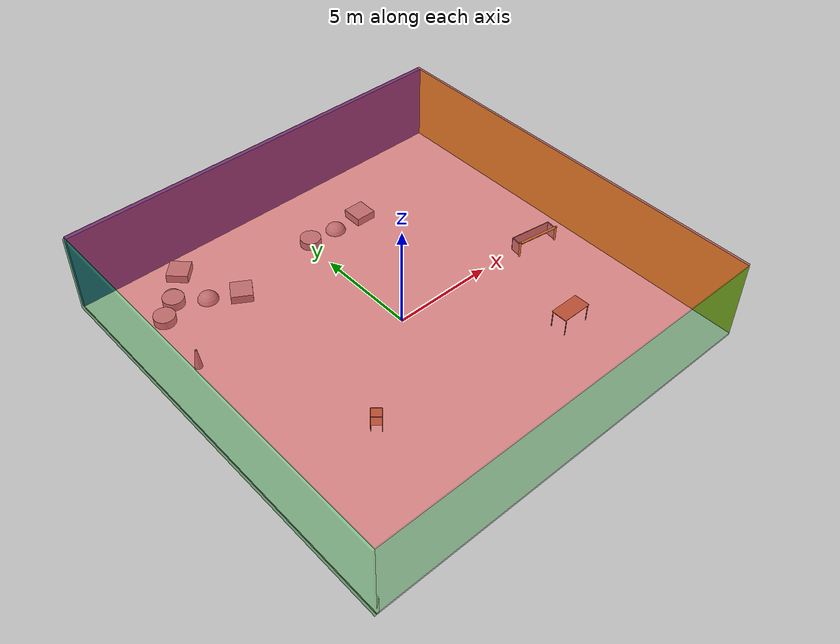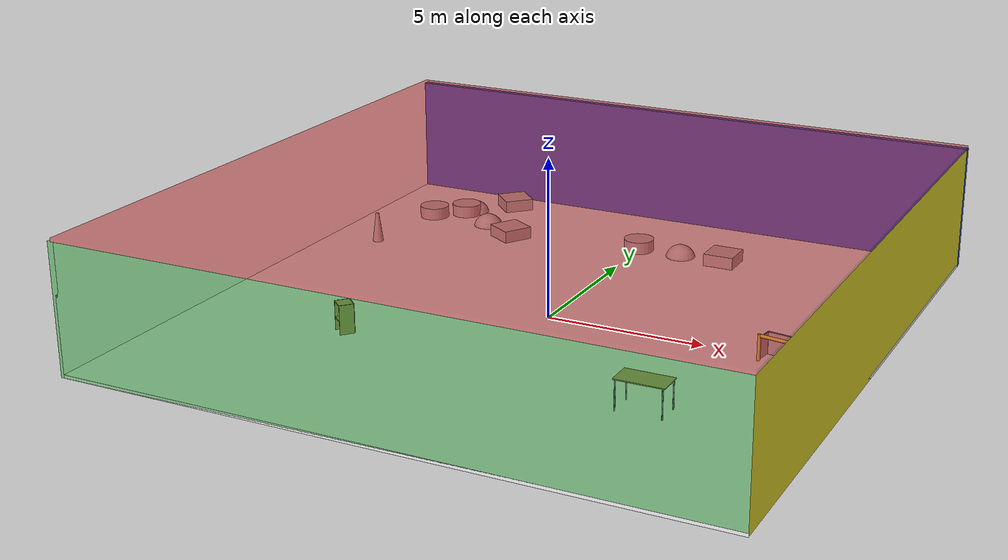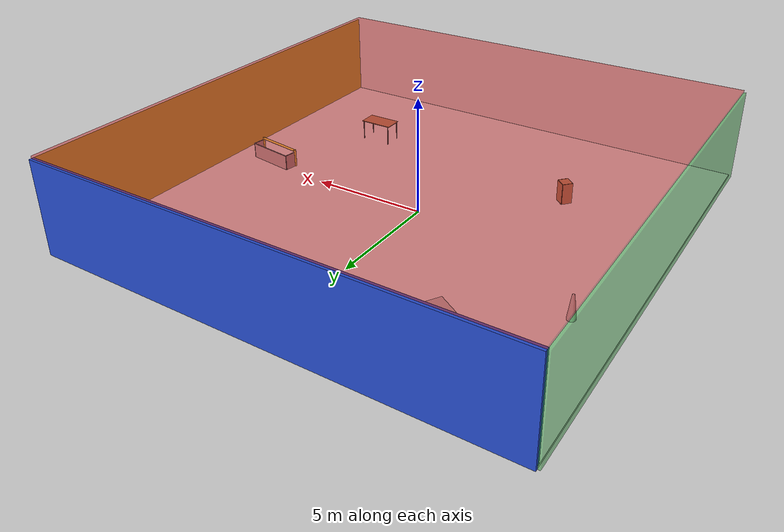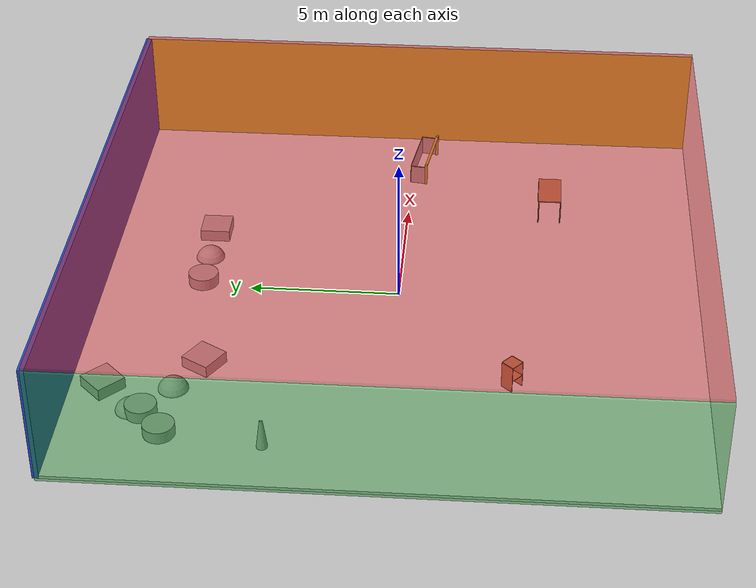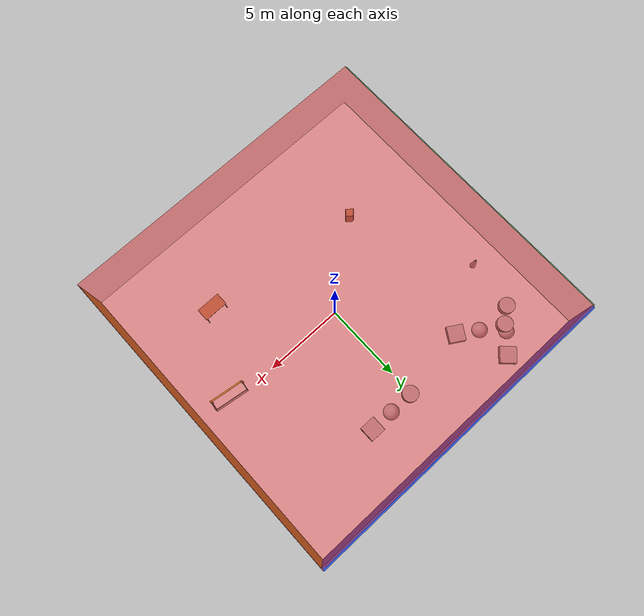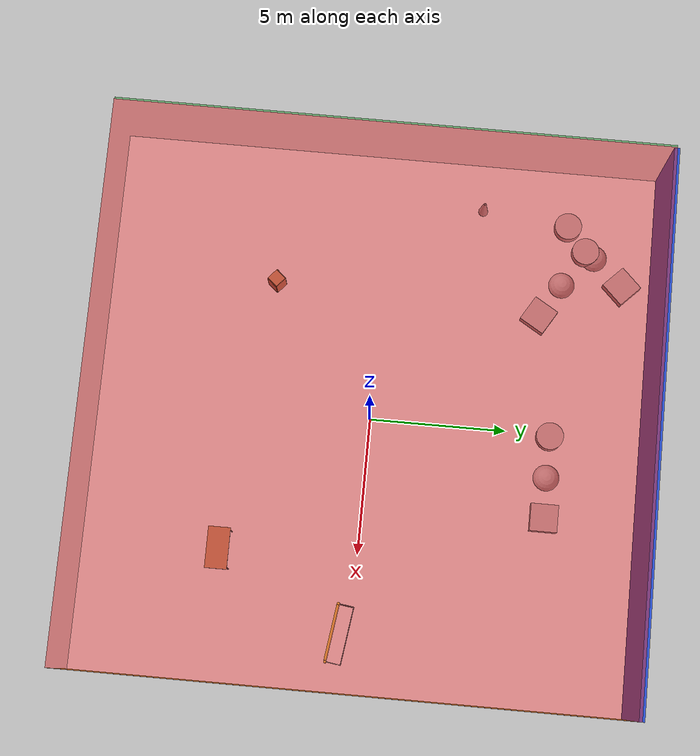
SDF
<sdf version="1.4">
 <world name="default">
  <physics type="ode">
   <max_step_size>0.001</max_step_size>
   <real_time_factor>1</real_time_factor>
   <real_time_update_rate>1000</real_time_update_rate>
   <gravity>0 0 -9.8</gravity>
  </physics>
  <scene><ambient>0.4 0.4 0.4 1</ambient><background>0.7 0.7 0.7 1</background><shadows>1</shadows></scene>
  <model name="Surrounding">
   <static>1</static>
   <link name="Ceiling">
    <collision name="Ceiling_Collision"><geometry><box><size>20 20 0.1</size></box></geometry></collision>
    <visual name="Ceiling_Visual">
     <geometry><box><size>20 20 0.1</size></box></geometry>
     <material>
      <script><uri>file://media/materials/scripts/gazebo.material</uri><name>Gazebo/RedTransparent</name></script>
     </material>
    </visual>
    <pose>0 0 4.05 0 0 0</pose>
   </link>
   <link name="Wall_South">
    <collision name="Wall_South_Collision">
     <geometry><box><size>20 0 4</size></box></geometry>
     <pose>0 0 2 0 -0 0</pose>
    </collision>
    <visual name="Wall_South_Visual">
     <pose>0 0 2 0 -0 0</pose>
     <geometry><box><size>20 0 4</size></box></geometry>
     <material>
      <script><uri>file://media/materials/scripts/gazebo.material</uri><name>Gazebo/GreenTransparent</name></script>
     </material>
    </visual>
    <velocity_decay><linear>0</linear><angular>0</angular></velocity_decay>
    <pose>0 -10 0 0 -0 0</pose>
   </link>
   <link name="Wall_East">
    <collision name="Wall_21_Collision">
     <geometry><box><size>20 0 4</size></box></geometry>
     <pose>0 0 2 0 -0 0</pose>
    </collision>
    <visual name="Wall_21_Visual">
     <pose>0 0 2 0 -0 0</pose>
     <geometry><box><size>20 0 4</size></box></geometry>
     <material>
      <script><uri>file://media/materials/scripts/gazebo.material</uri><name>Gazebo/YellowGlow</name></script>
     </material>
    </visual>
    <velocity_decay><linear>0</linear><angular>0</angular></velocity_decay>
    <pose>10 0 0 0 -0 1.5708</pose>
   </link>
   <link name="Wall_North">
    <collision name="Wall_22_Collision">
     <geometry><box><size>20 0.2 4</size></box></geometry>
     <pose>0 0 2 0 -0 0</pose>
    </collision>
    <visual name="Wall_22_Visual">
     <pose>0 0 2 0 -0 0</pose>
     <geometry><box><size>20 0.2 4</size></box></geometry>
     <material>
      <script><uri>file://media/materials/scripts/gazebo.material</uri><name>Gazebo/BlueLaser</name></script>
     </material>
    </visual>
    <velocity_decay><linear>0</linear><angular>0</angular></velocity_decay>
    <pose>0 10 0 0 -0 0</pose>
   </link>
   <link name="Wall_West">
    <collision name="Wall_23_Collision">
     <geometry><box><size>20 0.2 4</size></box></geometry>
     <pose>0 0 2 0 -0 0</pose>
    </collision>
    <visual name="Wall_23_Visual">
     <pose>0 0 2 0 -0 0</pose>
     <geometry><box><size>20 0.2 4</size></box></geometry>
     <material>
      <script><uri>file://media/materials/scripts/gazebo.material</uri><name>Gazebo/GreenTransparent</name></script>
     </material>
    </visual>
    <velocity_decay><linear>0</linear><angular>0</angular></velocity_decay>
    <pose>-10 0 0 0 0 -1.5708</pose>
   </link>
   <link name="Ground_link">
    <collision name="collision">
     <pose>0 0 .05 0 -0 0</pose>
     <geometry><box><size>20 20 0.1</size></box></geometry>
    </collision>
    <visual name="visual">
     <pose>0 0 .05 0 -0 0</pose>
     <geometry><box><size>20 20 0.1</size></box></geometry>
     <material>
      <script><uri>file://media/materials/scripts/gazebo.material</uri><name>Gazebo/White</name></script>
     </material>
    </visual>
   </link>
   <static>1</static>
  </model>
  <spherical_coordinates>
   <surface_model>EARTH_WGS84</surface_model>
   <latitude_deg>0</latitude_deg>
   <longitude_deg>0</longitude_deg>
   <elevation>0</elevation>
   <heading_deg>0</heading_deg>
  </spherical_coordinates>
  <light name="lightball_0" type="diffuse">
   <diffuse>0.8 0.8 0.8 1</diffuse>
   <specular>0.2 0.2 0.2 1</specular>
   <attenuation>
    <range>100</range>
    <constant>0.7</constant>
    <linear>0.01</linear>
    <quadratic>0.001</quadratic>
   </attenuation>
   <direction>-0.5 0.1 -0.9</direction>
   <pose>-2.01622850943 2.82210301079 3.19816831547 0 0 0</pose>
  </light>
  <light name="lightball_1" type="diffuse">
   <diffuse>0.8 0.8 0.8 1</diffuse>
   <specular>0.2 0.2 0.2 1</specular>
   <attenuation>
    <range>100</range>
    <constant>0.7</constant>
    <linear>0.01</linear>
    <quadratic>0.001</quadratic>
   </attenuation>
   <direction>-0.5 0.1 -0.9</direction>
   <pose>7.33016414512 8.85939546703 3.83589542289 0 0 0</pose>
  </light>
  <light name="lightball_2" type="diffuse">
   <diffuse>0.8 0.8 0.8 1</diffuse>
   <specular>0.2 0.2 0.2 1</specular>
   <attenuation>
    <range>100</range>
    <constant>0.7</constant>
    <linear>0.01</linear>
    <quadratic>0.001</quadratic>
   </attenuation>
   <direction>-0.5 0.1 -0.9</direction>
   <pose>-6.87561461488 -1.72350756301 1.73808676402 0 0 0</pose>
  </light>
  <light name="lightball_3" type="diffuse">
   <diffuse>0.8 0.8 0.8 1</diffuse>
   <specular>0.2 0.2 0.2 1</specular>
   <attenuation>
    <range>100</range>
    <constant>0.7</constant>
    <linear>0.01</linear>
    <quadratic>0.001</quadratic>
   </attenuation>
   <direction>-0.5 0.1 -0.9</direction>
   <pose>1.7121800166 -4.92600916429 3.57934559574 0 0 0</pose>
  </light>
  <light name="lightball_4" type="diffuse">
   <diffuse>0.8 0.8 0.8 1</diffuse>
   <specular>0.2 0.2 0.2 1</specular>
   <attenuation>
    <range>100</range>
    <constant>0.7</constant>
    <linear>0.01</linear>
    <quadratic>0.001</quadratic>
   </attenuation>
   <direction>-0.5 0.1 -0.9</direction>
   <pose>-4.98999639649 1.43185090422 3.55986747299 0 0 0</pose>
  </light>
  <light name="lightball_5" type="diffuse">
   <diffuse>0.8 0.8 0.8 1</diffuse>
   <specular>0.2 0.2 0.2 1</specular>
   <attenuation>
    <range>100</range>
    <constant>0.7</constant>
    <linear>0.01</linear>
    <quadratic>0.001</quadratic>
   </attenuation>
   <direction>-0.5 0.1 -0.9</direction>
   <pose>7.11158055694 -1.10272571881 2.03243337139 0 0 0</pose>
  </light>
  <include>
   <uri>model://construction_cone</uri>
   <pose>-8.22282979523 3.52923794381 0 0 0 1.65238206525</pose>
  </include>
  <include>
   <uri>model://textured_shapes</uri>
   <pose>-6.78030691644 7.77898499885 0 0 0 2.36022235732</pose>
  </include>
  <include><uri>model://cabinet</uri><pose>-4.76995591831 -3.86621661047 0 0 0 0.852125276812</pose></include>
  <include>
   <uri>model://textured_shapes</uri>
   <pose>-5.64901176011 6.64936586829 0 0 0 1.02680926993</pose>
  </include>
  <include>
   <uri>model://textured_shapes</uri>
   <pose>1.5996935013 6.59935077453 0 0 0 1.57024876723</pose>
  </include>
  <include><uri>model://table</uri><pose>5.26453147623 -4.98762988104 0 0 0 0.0015969866866</pose></include>
  <include>
   <uri>model://robocup_3Dsim_goal</uri>
   <pose>7.88675032117 -0.652941121917 0 0 0 1.43108349072</pose>
  </include>
 </world>
</sdf>

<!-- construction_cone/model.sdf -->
<sdf version="1.5">
  <model name="Construction Cone">
    <link name="link">
      <collision name="collision">
        <geometry>
          <mesh>
            <scale>10 10 10</scale>
            <uri>file://isr-testbed/construction_cone/meshes/construction_cone.dae</uri>
          </mesh>
        </geometry>
      </collision>
      <visual name="visual">
        <geometry>
          <mesh>
            <scale>10 10 10</scale>
            <uri>file://isr-testbed/construction_cone/meshes/construction_cone.dae</uri>
          </mesh>
        </geometry>
      </visual>
    </link>
  </model>
</sdf>

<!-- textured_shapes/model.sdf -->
<sdf version="1.6">
  <model name="textured_shapes">
    <pose>0 0 0.5 0 0 0</pose>
    <link name="box">
      <pose>0 -1.5 0 0 0 0</pose>
      <collision name="collision">
        <geometry>
          <box>
            <size>1 1 1</size>
          </box>
        </geometry>
      </collision>
      <visual name="visual">
        <geometry>
          <box>
            <size>1 1 1</size>
          </box>
        </geometry>
        <material>
          <script>
            <uri>model://../model_source/models/textured_shapes/materials/scripts</uri>
            <uri>model://../model_source/models/textured_shapes/materials/textures</uri>
            <name>TexturedShape/Squares</name>
          </script>
        </material>
      </visual>
    </link>
    <link name="sphere">
      <collision name="collision">
        <geometry>
          <sphere>
            <radius>0.5</radius>
          </sphere>
        </geometry>
      </collision>
      <visual name="visual">
        <geometry>
          <sphere>
            <radius>0.5</radius>
          </sphere>
        </geometry>
        <material>
          <script>
            <uri>model://../model_source/models/textured_shapes/materials/scripts</uri>
            <uri>model://../model_source/models/textured_shapes/materials/textures</uri>
            <name>TexturedShape/Squares</name>
          </script>
        </material>
      </visual>
    </link>
    <link name="cylinder">
      <pose>0 1.5 0 0 0 0</pose>
      <collision name="collision">
        <geometry>
          <cylinder>
            <radius>0.5</radius>
            <length>1</length>
          </cylinder>
        </geometry>
      </collision>
      <visual name="visual">
        <geometry>
          <cylinder>
            <radius>0.5</radius>
            <length>1</length>
          </cylinder>
        </geometry>
        <material>
          <script>
            <uri>model://../model_source/models/textured_shapes/materials/scripts</uri>
            <uri>model://../model_source/models/textured_shapes/materials/textures</uri>
            <name>TexturedShape/Squares</name>
          </script>
        </material>
      </visual>
    </link>
  </model>
</sdf>

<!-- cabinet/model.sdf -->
<sdf version="1.5">
  <model name="cabinet">
    <static>true</static>
    <link name="cabinet_bottom_plate">
      <inertial>
        <pose>0 0 -1 0 0 0</pose>
        <inertia>
          <ixx>2.050000</ixx>
          <ixy>0</ixy>
          <ixz>0</ixz>
          <iyy>2.050000</iyy>
          <iyz>0</iyz>
          <izz>2.050000</izz>
        </inertia>
        <mass>25.000000</mass>
      </inertial>
      <collision name="cabinet_bottom_plate_geom">
        <pose>0 0 0.010000 0 0 0</pose>
        <geometry>
          <box>
            <size>0.450000 0.450000 0.020000</size>
          </box>
        </geometry>
      </collision>
      <visual name="cabinet_bottom_plate_geom_visual">
        <pose>0 0 0.010000 0 0 0</pose>
        <geometry>
          <box>
            <size>0.450000 0.450000 0.020000</size>
          </box>
        </geometry>
        <material>
          <script>
            <uri>model://media/materials/scripts/gazebo.material</uri>
            <name>Gazebo/Wood</name>
          </script>
        </material>
      </visual>
      <collision name="cabinet_bottom_plate_geom_cabinet_back_plate">
        <pose>0.235000 0 0.510000 0 0 0</pose>
        <geometry>
          <box>
            <size>0.020000 0.450000 1.020000</size>
          </box>
        </geometry>
      </collision>
      <visual name="cabinet_bottom_plate_geom_cabinet_back_plate_visual">
        <pose>0.235000 0 0.510000 0 0 0</pose>
        <geometry>
          <box>
            <size>0.020000 0.450000 1.020000</size>
          </box>
        </geometry>
        <material>
          <script>
            <uri>model://media/materials/scripts/gazebo.material</uri>
            <name>Gazebo/Wood</name>
          </script>
        </material>
      </visual>
      <collision name="cabinet_bottom_plate_geom_cabinet_left_plate">
        <pose>0 0.235000 0.510000 0 0 0</pose>
        <geometry>
          <box>
            <size>0.450000 0.020000 1.020000</size>
          </box>
        </geometry>
      </collision>
      <visual name="cabinet_bottom_plate_geom_cabinet_left_plate_visual">
        <pose>0 0.235000 0.510000 0 0 0</pose>
        <geometry>
          <box>
            <size>0.450000 0.020000 1.020000</size>
          </box>
        </geometry>
        <material>
          <script>
            <uri>model://media/materials/scripts/gazebo.material</uri>
            <name>Gazebo/Wood</name>
          </script>
        </material>
      </visual>
      <collision name="cabinet_bottom_plate_geom_cabinet_middle_plate">
        <pose>0 0 0.510000 0 0 0</pose>
        <geometry>
          <box>
            <size>0.450000 0.450000 0.020000</size>
          </box>
        </geometry>
      </collision>
      <visual name="cabinet_bottom_plate_geom_cabinet_middle_plate_visual">
        <pose>0 0 0.510000 0 0 0</pose>
        <geometry>
          <box>
            <size>0.450000 0.450000 0.020000</size>
          </box>
        </geometry>
        <material>
          <script>
            <uri>model://media/materials/scripts/gazebo.material</uri>
            <name>Gazebo/Wood</name>
          </script>
        </material>
      </visual>
      <collision name="cabinet_bottom_plate_geom_cabinet_right_plate">
        <pose>0 -0.235000 0.510000 0 0 0</pose>
        <geometry>
          <box>
            <size>0.450000 0.020000 1.020000</size>
          </box>
        </geometry>
      </collision>
      <visual name="cabinet_bottom_plate_geom_cabinet_right_plate_visual">
        <pose>0 -0.235000 0.510000 0 0 0</pose>
        <geometry>
          <box>
            <size>0.450000 0.020000 1.020000</size>
          </box>
        </geometry>
        <material>
          <script>
            <uri>model://media/materials/scripts/gazebo.material</uri>
            <name>Gazebo/Wood</name>
          </script>
        </material>
      </visual>
      <collision name="cabinet_bottom_plate_geom_cabinet_top_plate">
        <pose>0 0 1.010000 0 0 0</pose>
        <geometry>
          <box>
            <size>0.450000 0.450000 0.020000</size>
          </box>
        </geometry>
      </collision>
      <visual name="cabinet_bottom_plate_geom_cabinet_top_plate_visual">
        <pose>0 0 1.010000 0 0 0</pose>
        <geometry>
          <box>
            <size>0.450000 0.450000 0.020000</size>
          </box>
        </geometry>
        <material>
          <script>
            <uri>model://media/materials/scripts/gazebo.material</uri>
            <name>Gazebo/Wood</name>
          </script>
        </material>
      </visual>
    </link>
  </model>
</sdf>

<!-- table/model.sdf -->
<sdf version="1.5">
  <model name="table">
    <static>true</static>
    <link name="link">
      <collision name="surface">
        <pose>0 0 1.0 0 0 0</pose>
        <geometry>
          <box>
            <size>1.5 0.8 0.03</size>
          </box>
        </geometry>
        <surface>
          <friction>
            <ode>
              <mu>0.6</mu>
              <mu2>0.6</mu2>
            </ode>
          </friction>
        </surface>
      </collision>
      <visual name="visual1">
        <pose>0 0 1.0 0 0 0</pose>
        <geometry>
          <box>
            <size>1.5 0.8 0.03</size>
          </box>
        </geometry>
        <material>
          <script>
            <uri>model://media/materials/scripts/gazebo.material</uri>
            <name>Gazebo/Wood</name>
          </script>
        </material>
      </visual>
      <collision name="front_left_leg">
        <pose>0.68 0.38 0.5 0 0 0</pose>
        <geometry>
          <cylinder>
            <radius>0.02</radius>
            <length>1.0</length>
          </cylinder>
        </geometry>
      </collision>
      <visual name="front_left_leg">
        <pose>0.68 0.38 0.5 0 0 0</pose>
        <geometry>
          <cylinder>
            <radius>0.02</radius>
            <length>1.0</length>
          </cylinder>
        </geometry>
        <material>
          <script>
            <uri>model://media/materials/scripts/gazebo.material</uri>
            <name>Gazebo/Grey</name>
          </script>
        </material>
      </visual>
      <collision name="front_right_leg">
        <pose>0.68 -0.38 0.5 0 0 0</pose>
        <geometry>
          <cylinder>
            <radius>0.02</radius>
            <length>1.0</length>
          </cylinder>
        </geometry>
      </collision>
      <visual name="front_right_leg">
        <pose>0.68 -0.38 0.5 0 0 0</pose>
        <geometry>
          <cylinder>
            <radius>0.02</radius>
            <length>1.0</length>
          </cylinder>
        </geometry>
        <material>
          <script>
            <uri>model://media/materials/scripts/gazebo.material</uri>
            <name>Gazebo/Grey</name>
          </script>
        </material>
      </visual>
      <collision name="back_right_leg">
        <pose>-0.68 -0.38 0.5 0 0 0</pose>
        <geometry>
          <cylinder>
            <radius>0.02</radius>
            <length>1.0</length>
          </cylinder>
        </geometry>
      </collision>
      <visual name="back_right_leg">
        <pose>-0.68 -0.38 0.5 0 0 0</pose>
        <geometry>
          <cylinder>
            <radius>0.02</radius>
            <length>1.0</length>
          </cylinder>
        </geometry>
        <material>
          <script>
            <uri>model://media/materials/scripts/gazebo.material</uri>
            <name>Gazebo/Grey</name>
          </script>
        </material>
      </visual>
      <collision name="back_left_leg">
        <pose>-0.68 0.38 0.5 0 0 0</pose>
        <geometry>
          <cylinder>
            <radius>0.02</radius>
            <length>1.0</length>
          </cylinder>
        </geometry>
      </collision>
      <visual name="back_left_leg">
        <pose>-0.68 0.38 0.5 0 0 0</pose>
        <geometry>
          <cylinder>
            <radius>0.02</radius>
            <length>1.0</length>
          </cylinder>
        </geometry>
        <material>
          <script>
            <uri>model://media/materials/scripts/gazebo.material</uri>
            <name>Gazebo/Grey</name>
          </script>
        </material>
      </visual>
    </link>
  </model>
</sdf>

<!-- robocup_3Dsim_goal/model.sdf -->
<sdf version="1.5">
  <model name="robocup_3d_goal">
    <static>true</static>
    <link name="left_post">
      <pose>0 1.05 0.45 0 0 0</pose>
      <collision name="collision">
        <geometry>
          <cylinder>
            <radius>0.05</radius>
            <length>0.9</length>
          </cylinder>
        </geometry>
      </collision>
      <visual name="visual">
        <geometry>
          <cylinder>
            <radius>0.05</radius>
            <length>0.9</length>
          </cylinder>
        </geometry>
        <material>
          <script>
            <uri>file://media/materials/scripts/gazebo.material</uri>
            <name>Gazebo/ZincYellow</name>
          </script>
        </material>
      </visual>
    </link>
    <link name="left_support_horiz_lower">
      <pose>0.30 1.05 0.01 0 0 0</pose>
      <collision name="collision">
        <geometry>
          <box>
            <size>0.50 0.02 0.02</size>
          </box>
        </geometry>
      </collision>
      <visual name="visual">
        <geometry>
          <box>
            <size>0.50 0.02 0.02</size>
          </box>
        </geometry>
        <material>
          <script>
            <uri>file://media/materials/scripts/gazebo.material</uri>
            <name>Gazebo/White</name>
          </script>
        </material>
      </visual>
    </link>
    <link name="left_support_horiz_upper">
      <pose>0.30 1.05 0.79 0 0 0</pose>
      <collision name="collision">
        <geometry>
          <box>
            <size>0.50 0.02 0.02</size>
          </box>
        </geometry>
      </collision>
      <visual name="visual">
        <geometry>
          <box>
            <size>0.50 0.02 0.02</size>
          </box>
        </geometry>
        <material>
          <script>
            <uri>file://media/materials/scripts/gazebo.material</uri>
            <name>Gazebo/White</name>
          </script>
        </material>
      </visual>
    </link>
    <link name="left_support_vertical">
      <pose>0.56 1.05 0.4 0 1.5708 0</pose>
      <collision name="collision">
        <geometry>
          <box>
            <size>0.80 0.02 0.02</size>
          </box>
        </geometry>
      </collision>
      <visual name="visual">
        <geometry>
          <box>
            <size>0.80 0.02 0.02</size>
          </box>
        </geometry>
        <material>
          <script>
            <uri>file://media/materials/scripts/gazebo.material</uri>
            <name>Gazebo/White</name>
          </script>
        </material>
      </visual>
    </link>
    <link name="right_support_horiz_lower">
      <pose>0.30 -1.05 0.01 0 0 0</pose>
      <collision name="collision">
        <geometry>
          <box>
            <size>0.50 0.02 0.02</size>
          </box>
        </geometry>
      </collision>
      <visual name="visual">
        <geometry>
          <box>
            <size>0.50 0.02 0.02</size>
          </box>
        </geometry>
        <material>
          <script>
            <uri>file://media/materials/scripts/gazebo.material</uri>
            <name>Gazebo/White</name>
          </script>
        </material>
      </visual>
    </link>
    <link name="right_support_horiz_upper">
      <pose>0.30 -1.05 0.79 0 0 0</pose>
      <collision name="collision">
        <geometry>
          <box>
            <size>0.50 0.02 0.02</size>
          </box>
        </geometry>
      </collision>
      <visual name="visual">
        <geometry>
          <box>
            <size>0.50 0.02 0.02</size>
          </box>
        </geometry>
        <material>
          <script>
            <uri>file://media/materials/scripts/gazebo.material</uri>
            <name>Gazebo/White</name>
          </script>
        </material>
      </visual>
    </link>
    <link name="right_support_vertical">
      <pose>0.56 -1.05 0.4 0 1.5708 0</pose>
      <collision name="collision">
        <geometry>
          <box>
            <size>0.80 0.02 0.02</size>
          </box>
        </geometry>
      </collision>
      <visual name="visual">
        <geometry>
          <box>
            <size>0.80 0.02 0.02</size>
          </box>
        </geometry>
        <material>
          <script>
            <uri>file://media/materials/scripts/gazebo.material</uri>
            <name>Gazebo/White</name>
          </script>
        </material>
      </visual>
    </link>
    <link name="center_support_horiz_lower">
      <pose>0.56 0 0.01 0 1.5708 0</pose>
      <collision name="collision">
        <geometry>
          <box>
            <size>0.02 2.08 0.02</size>
          </box>
        </geometry>
      </collision>
      <visual name="visual">
        <geometry>
          <box>
            <size>0.02 2.08 0.02</size>
          </box>
        </geometry>
        <material>
          <script>
            <uri>file://media/materials/scripts/gazebo.material</uri>
            <name>Gazebo/White</name>
          </script>
        </material>
      </visual>
    </link>
    <link name="center_support_horiz_upper">
      <pose>0.56 0 0.79 0 1.5708 0</pose>
      <collision name="collision">
        <geometry>
          <box>
            <size>0.02 2.08 0.02</size>
          </box>
        </geometry>
      </collision>
      <visual name="visual">
        <geometry>
          <box>
            <size>0.02 2.08 0.02</size>
          </box>
        </geometry>
        <material>
          <script>
            <uri>file://media/materials/scripts/gazebo.material</uri>
            <name>Gazebo/White</name>
          </script>
        </material>
      </visual>
    </link>
    <link name="right_post">
      <pose>0 -1.05 0.45 0 0 0</pose>
      <collision name="collision">
        <geometry>
          <cylinder>
            <radius>0.05</radius>
            <length>0.9</length>
          </cylinder>
        </geometry>
      </collision>
      <visual name="visual">
        <geometry>
          <cylinder>
            <radius>0.05</radius>
            <length>0.9</length>
          </cylinder>
        </geometry>
        <material>
          <script>
            <uri>file://media/materials/scripts/gazebo.material</uri>
            <name>Gazebo/ZincYellow</name>
          </script>
        </material>
      </visual>
    </link>
    <link name="crossbar">
      <pose>0 0 0.85 1.57 1.57 0</pose>
      <collision name="collision">
        <geometry>
          <cylinder>
            <radius>0.05</radius>
            <length>2.0</length>
          </cylinder>
        </geometry>
      </collision>
      <visual name="visual">
        <geometry>
          <cylinder>
            <radius>0.05</radius>
            <length>2.0</length>
          </cylinder>
        </geometry>
        <material>
          <script>
            <uri>file://media/materials/scripts/gazebo.material</uri>
            <name>Gazebo/ZincYellow</name>
          </script>
        </material>
      </visual>
    </link>
    <link name="center_net">
      <pose>0.56 0 0.40 0 0 0</pose>
      <collision name="collision">
        <geometry>
          <box>
            <size>0.01 2.1 0.80</size>
          </box>
        </geometry>
      </collision>
      <visual name="visual">
        <geometry>
          <box>
            <size>0.01 2.1 0.80</size>
          </box>
        </geometry>
        <material>
          <script>
            <uri>model://../model_source/models/robocup09_spl_field/materials/scripts/</uri>
            <uri>model://../model_source/models/robocup09_spl_field/materials/textures/</uri>
            <name>RoboCup/Net</name>
          </script>
        </material>
      </visual>
    </link>
    <link name="left_net">
      <pose>0.30 1.05 0.40 0 0 0</pose>
      <collision name="collision">
        <geometry>
          <box>
            <size>0.50 0.01 0.76</size>
          </box>
        </geometry>
      </collision>
      <visual name="visual">
        <geometry>
          <box>
            <size>0.50 0.01 0.76</size>
          </box>
        </geometry>
        <material>
          <script>
            <uri>model://../model_source/models/robocup09_spl_field/materials/scripts/</uri>
            <uri>model://../model_source/models/robocup09_spl_field/materials/textures/</uri>
            <name>RoboCup/Net</name>
          </script>
        </material>
      </visual>
    </link>
    <link name="right_net">
      <pose>0.30 -1.05 0.40 0 0 0</pose>
      <collision name="collision">
        <geometry>
          <box>
            <size>0.50 0.01 0.76</size>
          </box>
        </geometry>
      </collision>
      <visual name="visual">
        <geometry>
          <box>
            <size>0.50 0.01 0.76</size>
          </box>
        </geometry>
        <material>
          <script>
            <uri>model://../model_source/models/robocup09_spl_field/materials/scripts/</uri>
            <uri>model://../model_source/models/robocup09_spl_field/materials/textures/</uri>
            <name>RoboCup/Net</name>
          </script>
        </material>
      </visual>
    </link>
  </model>
</sdf>
